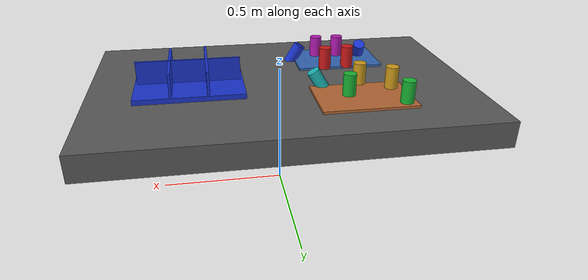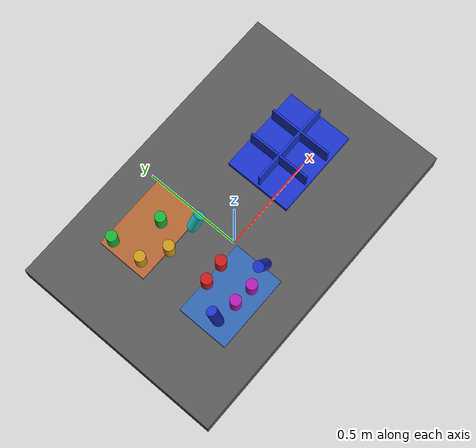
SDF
<?xml version="1.0" ?>
<sdf version="1.9">
  <!-- Standalone M1B scene.  The controller-backed Panda is spawned by the
       existing launch path; this file never alters the frozen M1A cube world. -->
  <world name="industrial_cylinder_v1">
    <physics name="bullet" type="bullet"><max_step_size>0.001</max_step_size><real_time_factor>1.0</real_time_factor></physics>
    <plugin name="gz::sim::systems::Physics" filename="gz-sim-physics-system"><engine><filename>gz-physics-bullet-featherstone-plugin</filename></engine></plugin>
    <plugin name="gz::sim::systems::UserCommands" filename="gz-sim-user-commands-system"/>
    <plugin name="gz::sim::systems::SceneBroadcaster" filename="gz-sim-scene-broadcaster-system"/>
    <plugin name="gz::sim::systems::Sensors" filename="gz-sim-sensors-system"><render_engine>ogre2</render_engine></plugin>
    <gravity>0 0 -9.81</gravity>
    <light type="directional" name="industrial_light"><pose>0 0 5 0 0 0</pose><direction>-0.3 0.2 -0.9</direction><diffuse>0.9 0.9 0.9 1</diffuse></light>
    <model name="industrial_work_table"><static>true</static><link name="link"><pose>0 0 0.4 0 0 0</pose><collision name="collision"><geometry><box><size>1.5 1.0 0.1</size></box></geometry></collision><visual name="visual"><geometry><box><size>1.5 1.0 0.1</size></box></geometry><material><diffuse>0.35 0.35 0.35 1</diffuse></material></visual></link></model>
    <model name="camera_fixture"><static>true</static><link name="camera_rgbd"><pose>-0.80 -0.80 1.40 0 0.77 0.93</pose><sensor name="front_rgbd" type="rgbd_camera"><always_on>1</always_on><update_rate>15</update_rate><topic>/xh/camera/rgbd</topic><camera><horizontal_fov>1.047</horizontal_fov><image><width>640</width><height>480</height><format>R8G8B8</format></image><clip><near>0.1</near><far>4.0</far></clip></camera></sensor></link></model>
    <model name="incoming_zone_a"><static>true</static><link name="link"><pose>-0.28 -0.22 0.455 0 0 0</pose><visual name="visual"><geometry><box><size>0.36 0.24 0.01</size></box></geometry><material><diffuse>0.2 0.4 0.7 1</diffuse></material></visual></link></model>
    <model name="incoming_zone_b"><static>true</static><link name="link"><pose>-0.28 0.22 0.455 0 0 0</pose><visual name="visual"><geometry><box><size>0.36 0.24 0.01</size></box></geometry><material><diffuse>0.7 0.4 0.2 1</diffuse></material></visual></link></model>
    <!-- M1B_RANDOM_PARTS_BEGIN -->
    <model name="cylinder_01"><pose>-0.2092 -0.1069 0.5000 0.0000 0.0000 1.9737</pose><link name="link"><inertial><mass>0.06</mass></inertial><collision name="collision"><geometry><cylinder><radius>0.025</radius><length>0.09</length></cylinder></geometry></collision><visual name="visual"><geometry><cylinder><radius>0.025</radius><length>0.09</length></cylinder></geometry><material><diffuse>0.800 0.100 0.100 1</diffuse><specular>0.15 0.15 0.15 1</specular></material></visual></link></model>
    <model name="cylinder_02"><pose>-0.2301 0.2042 0.5000 3.1416 0.0000 -1.2413</pose><link name="link"><inertial><mass>0.06</mass></inertial><collision name="collision"><geometry><cylinder><radius>0.025</radius><length>0.09</length></cylinder></geometry></collision><visual name="visual"><geometry><cylinder><radius>0.025</radius><length>0.09</length></cylinder></geometry><material><diffuse>0.100 0.700 0.200 1</diffuse><specular>0.15 0.15 0.15 1</specular></material></visual></link></model>
    <model name="cylinder_03"><pose>-0.3914 -0.2340 0.4800 0.4500 -0.3000 -2.6997</pose><link name="link"><inertial><mass>0.06</mass></inertial><collision name="collision"><geometry><cylinder><radius>0.025</radius><length>0.09</length></cylinder></geometry></collision><visual name="visual"><geometry><cylinder><radius>0.025</radius><length>0.09</length></cylinder></geometry><material><diffuse>0.100 0.200 0.800 1</diffuse><specular>0.15 0.15 0.15 1</specular></material></visual></link></model>
    <model name="cylinder_04"><pose>-0.4101 0.1566 0.5000 0.0000 0.0000 -0.6951</pose><link name="link"><inertial><mass>0.06</mass></inertial><collision name="collision"><geometry><cylinder><radius>0.025</radius><length>0.09</length></cylinder></geometry></collision><visual name="visual"><geometry><cylinder><radius>0.025</radius><length>0.09</length></cylinder></geometry><material><diffuse>0.800 0.600 0.100 1</diffuse><specular>0.15 0.15 0.15 1</specular></material></visual></link></model>
    <model name="cylinder_05"><pose>-0.2040 -0.2671 0.5000 3.1416 0.0000 1.1479</pose><link name="link"><inertial><mass>0.06</mass></inertial><collision name="collision"><geometry><cylinder><radius>0.025</radius><length>0.09</length></cylinder></geometry></collision><visual name="visual"><geometry><cylinder><radius>0.025</radius><length>0.09</length></cylinder></geometry><material><diffuse>0.700 0.100 0.700 1</diffuse><specular>0.15 0.15 0.15 1</specular></material></visual></link></model>
    <model name="cylinder_06"><pose>-0.1378 0.0944 0.4800 0.4500 -0.3000 1.9831</pose><link name="link"><inertial><mass>0.06</mass></inertial><collision name="collision"><geometry><cylinder><radius>0.025</radius><length>0.09</length></cylinder></geometry></collision><visual name="visual"><geometry><cylinder><radius>0.025</radius><length>0.09</length></cylinder></geometry><material><diffuse>0.100 0.700 0.700 1</diffuse><specular>0.15 0.15 0.15 1</specular></material></visual></link></model>
    <model name="cylinder_07"><pose>-0.3056 -0.1128 0.5000 0.0000 0.0000 0.9552</pose><link name="link"><inertial><mass>0.06</mass></inertial><collision name="collision"><geometry><cylinder><radius>0.025</radius><length>0.09</length></cylinder></geometry></collision><visual name="visual"><geometry><cylinder><radius>0.025</radius><length>0.09</length></cylinder></geometry><material><diffuse>0.800 0.100 0.100 1</diffuse><specular>0.15 0.15 0.15 1</specular></material></visual></link></model>
    <model name="cylinder_08"><pose>-0.4208 0.3019 0.5000 3.1416 0.0000 0.4073</pose><link name="link"><inertial><mass>0.06</mass></inertial><collision name="collision"><geometry><cylinder><radius>0.025</radius><length>0.09</length></cylinder></geometry></collision><visual name="visual"><geometry><cylinder><radius>0.025</radius><length>0.09</length></cylinder></geometry><material><diffuse>0.100 0.700 0.200 1</diffuse><specular>0.15 0.15 0.15 1</specular></material></visual></link></model>
    <model name="cylinder_09"><pose>-0.1027 -0.2395 0.4800 0.4500 -0.3000 -1.1456</pose><link name="link"><inertial><mass>0.06</mass></inertial><collision name="collision"><geometry><cylinder><radius>0.025</radius><length>0.09</length></cylinder></geometry></collision><visual name="visual"><geometry><cylinder><radius>0.025</radius><length>0.09</length></cylinder></geometry><material><diffuse>0.100 0.200 0.800 1</diffuse><specular>0.15 0.15 0.15 1</specular></material></visual></link></model>
    <model name="cylinder_10"><pose>-0.2992 0.0964 0.5000 0.0000 0.0000 -0.8718</pose><link name="link"><inertial><mass>0.06</mass></inertial><collision name="collision"><geometry><cylinder><radius>0.025</radius><length>0.09</length></cylinder></geometry></collision><visual name="visual"><geometry><cylinder><radius>0.025</radius><length>0.09</length></cylinder></geometry><material><diffuse>0.800 0.600 0.100 1</diffuse><specular>0.15 0.15 0.15 1</specular></material></visual></link></model>
    <model name="cylinder_11"><pose>-0.2963 -0.2594 0.5000 3.1416 0.0000 -1.2967</pose><link name="link"><inertial><mass>0.06</mass></inertial><collision name="collision"><geometry><cylinder><radius>0.025</radius><length>0.09</length></cylinder></geometry></collision><visual name="visual"><geometry><cylinder><radius>0.025</radius><length>0.09</length></cylinder></geometry><material><diffuse>0.700 0.100 0.700 1</diffuse><specular>0.15 0.15 0.15 1</specular></material></visual></link></model>
    <!-- M1B_RANDOM_PARTS_END -->
    <model name="blue_partition_bin"><static>true</static><pose>0.36 0 0.45 0 0 0</pose><link name="link"><collision name="floor"><pose>0 0 0.01 0 0 0</pose><geometry><box><size>0.42 0.32 0.02</size></box></geometry></collision><visual name="floor_visual"><pose>0 0 0.01 0 0 0</pose><geometry><box><size>0.42 0.32 0.02</size></box></geometry><material><diffuse>0.1 0.2 0.8 1</diffuse></material></visual><visual name="row_divider"><pose>0 0 0.06 0 0 0</pose><geometry><box><size>0.40 0.01 0.10</size></box></geometry><material><diffuse>0.1 0.2 0.8 1</diffuse></material></visual><visual name="col_divider_a"><pose>-0.07 0 0.06 0 0 0</pose><geometry><box><size>0.01 0.30 0.10</size></box></geometry><material><diffuse>0.1 0.2 0.8 1</diffuse></material></visual><visual name="col_divider_b"><pose>0.07 0 0.06 0 0 0</pose><geometry><box><size>0.01 0.30 0.10</size></box></geometry><material><diffuse>0.1 0.2 0.8 1</diffuse></material></visual></link></model>
    <!-- Reserved only: second table, bin transport corridor, stackable-bin
         collision volume, and second arm mounting namespace. -->
  </world>
</sdf>
